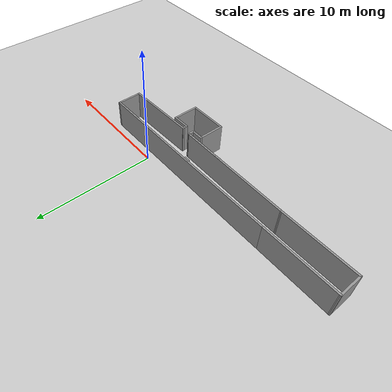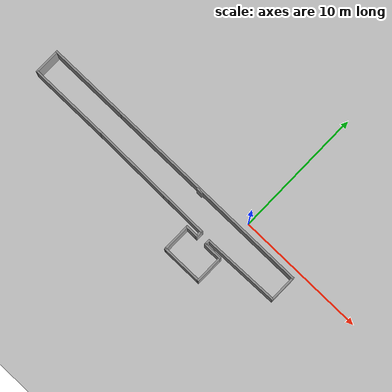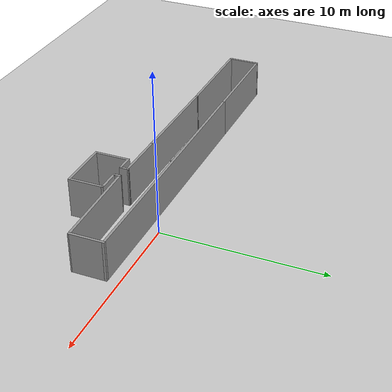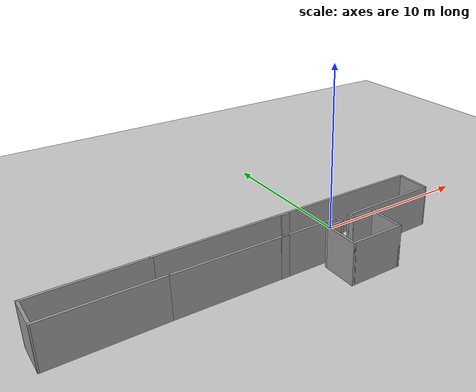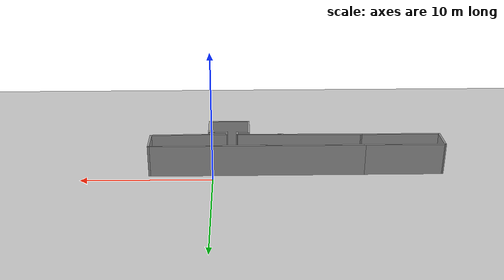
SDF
<sdf version="1.7">
 <world name="default">
  <light name="sun" type="directional">
   <pose>0 0 10 0 -0 0</pose>
   <diffuse>0.8 0.8 0.8 1</diffuse>
   <specular>0.2 0.2 0.2 1</specular>
   <attenuation>
    <range>1000</range>
    <constant>0.9</constant>
    <linear>0.01</linear>
    <quadratic>0.001</quadratic>
   </attenuation>
   <direction>-0.5 0.1 -0.9</direction>
   <spot><inner_angle>0</inner_angle><outer_angle>0</outer_angle><falloff>0</falloff></spot>
  </light>
  <model name="ground_plane">
   <static>1</static>
   <link name="link">
    <collision name="collision">
     <geometry><plane><normal>0 0 1</normal><size>100 100</size></plane></geometry>
     <surface>
      <contact><collide_bitmask>65535</collide_bitmask></contact>
      <friction><ode><mu>100</mu><mu2>50</mu2></ode></friction>
     </surface>
    </collision>
    <visual name="visual">
     <cast_shadows>0</cast_shadows>
     <geometry><plane><normal>0 0 1</normal><size>100 100</size></plane></geometry>
     <material>
      <script><uri>file://media/materials/scripts/gazebo.material</uri><name>Gazebo/Grey</name></script>
     </material>
    </visual>
   </link>
  </model>
  <gravity>0 0 -9.8</gravity>
  <magnetic_field>6e-06 2.3e-05 -4.2e-05</magnetic_field>
  <atmosphere type="adiabatic"/>
  <physics type="ode">
   <max_step_size>0.001</max_step_size>
   <real_time_factor>1</real_time_factor>
   <real_time_update_rate>1000</real_time_update_rate>
  </physics>
  <scene><ambient>0.4 0.4 0.4 1</ambient><background>0.7 0.7 0.7 1</background><shadows>1</shadows></scene>
  <audio><device>default</device></audio>
  <spherical_coordinates>
   <surface_model>EARTH_WGS84</surface_model>
   <latitude_deg>0</latitude_deg>
   <longitude_deg>0</longitude_deg>
   <elevation>0</elevation>
   <heading_deg>0</heading_deg>
  </spherical_coordinates>
  <model name="testworld3">
   <pose>-6.40432 -2.68838 0 0 -0 0</pose>
   <link name="Wall_11">
    <collision name="Wall_11_Collision">
     <geometry><box><size>16.5 0.15 2.5</size></box></geometry>
     <pose>0 0 1.25 0 -0 0</pose>
    </collision>
    <visual name="Wall_11_Visual">
     <pose>0 0 1.25 0 -0 0</pose>
     <geometry><box><size>16.5 0.15 2.5</size></box></geometry>
     <material>
      <script><uri>file://media/materials/scripts/gazebo.material</uri><name>Gazebo/Grey</name></script>
      <ambient>1 1 1 1</ambient>
     </material>
     <meta><layer>0</layer></meta>
    </visual>
    <pose>3.04932 1.95838 0 0 -0 3.14159</pose>
   </link>
   <link name="Wall_13">
    <collision name="Wall_13_Collision">
     <geometry><box><size>9.76351 0.15 2.5</size></box></geometry>
     <pose>0 0 1.25 0 -0 0</pose>
    </collision>
    <visual name="Wall_13_Visual">
     <pose>0 0 1.25 0 -0 0</pose>
     <geometry><box><size>9.76351 0.15 2.5</size></box></geometry>
     <material>
      <script><uri>file://media/materials/scripts/gazebo.material</uri><name>Gazebo/Grey</name></script>
      <ambient>1 1 1 1</ambient>
     </material>
     <meta><layer>0</layer></meta>
    </visual>
    <pose>-0.31584 -0.010052 0 0 -0 3.1288</pose>
   </link>
   <link name="Wall_18">
    <collision name="Wall_18_Collision">
     <geometry><box><size>0.5 0.15 2.5</size></box></geometry>
     <pose>0 0 1.25 0 -0 0</pose>
    </collision>
    <visual name="Wall_18_Visual">
     <pose>0 0 1.25 0 -0 0</pose>
     <geometry><box><size>0.5 0.15 2.5</size></box></geometry>
     <material>
      <script><uri>file://media/materials/scripts/gazebo.material</uri><name>Gazebo/Grey</name></script>
      <ambient>1 1 1 1</ambient>
     </material>
     <meta><layer>0</layer></meta>
    </visual>
    <pose>2.52934 1.86135 0 0 -0 0</pose>
   </link>
   <link name="Wall_22">
    <collision name="Wall_22_Collision">
     <geometry><box><size>0.15 0.15 2.5</size></box></geometry>
     <pose>0 0 1.25 0 -0 0</pose>
    </collision>
    <visual name="Wall_22_Visual">
     <pose>0 0 1.25 0 -0 0</pose>
     <geometry><box><size>0.15 0.15 2.5</size></box></geometry>
     <material>
      <script><uri>file://media/materials/scripts/gazebo.material</uri><name>Gazebo/Grey</name></script>
      <ambient>1 1 1 1</ambient>
     </material>
     <meta><layer>0</layer></meta>
    </visual>
    <pose>4.53704 -0.07153 0 0 -0 0</pose>
   </link>
   <link name="Wall_25">
    <collision name="Wall_25_Collision">
     <geometry><box><size>0.59305 0.15 2.5</size></box></geometry>
     <pose>0 0 1.25 0 -0 0</pose>
    </collision>
    <visual name="Wall_25_Visual">
     <pose>0 0 1.25 0 -0 0</pose>
     <geometry><box><size>0.59305 0.15 2.5</size></box></geometry>
     <material>
      <script><uri>file://media/materials/scripts/gazebo.material</uri><name>Gazebo/Grey</name></script>
      <ambient>1 1 1 1</ambient>
     </material>
     <meta><layer>0</layer></meta>
    </visual>
    <pose>4.53775 -0.293054 0 0 -0 -1.56761</pose>
   </link>
   <link name="Wall_27">
    <collision name="Wall_27_Collision">
     <geometry><box><size>0.5 0.15 2.5</size></box></geometry>
     <pose>0 0 1.25 0 -0 0</pose>
    </collision>
    <visual name="Wall_27_Visual">
     <pose>0 0 1.25 0 -0 0</pose>
     <geometry><box><size>0.5 0.15 2.5</size></box></geometry>
     <material>
      <script><uri>file://media/materials/scripts/gazebo.material</uri><name>Gazebo/Grey</name></script>
      <ambient>1 1 1 1</ambient>
     </material>
     <meta><layer>0</layer></meta>
    </visual>
    <pose>5.35443 -0.334415 0 0 -0 -1.5708</pose>
   </link>
   <link name="Wall_32">
    <collision name="Wall_32_Collision">
     <geometry><box><size>1 0.15 2.5</size></box></geometry>
     <pose>0 0 1.25 0 -0 0</pose>
    </collision>
    <visual name="Wall_32_Visual">
     <pose>0 0 1.25 0 -0 0</pose>
     <geometry><box><size>1 0.15 2.5</size></box></geometry>
     <material>
      <script><uri>file://media/materials/scripts/gazebo.material</uri><name>Gazebo/Grey</name></script>
      <ambient>1 1 1 1</ambient>
     </material>
     <meta><layer>0</layer></meta>
    </visual>
    <pose>4.03767 -0.513378 0 0 -0 3.14159</pose>
   </link>
   <link name="Wall_33">
    <collision name="Wall_33_Collision">
     <geometry><box><size>2.25 0.15 2.5</size></box></geometry>
     <pose>0 0 1.25 0 -0 0</pose>
    </collision>
    <visual name="Wall_33_Visual">
     <pose>0 0 1.25 0 -0 0</pose>
     <geometry><box><size>2.25 0.15 2.5</size></box></geometry>
     <material>
      <script><uri>file://media/materials/scripts/gazebo.material</uri><name>Gazebo/Grey</name></script>
      <ambient>1 1 1 1</ambient>
     </material>
     <meta><layer>0</layer></meta>
    </visual>
    <pose>3.61267 -1.56338 0 0 -0 -1.5708</pose>
   </link>
   <link name="Wall_34">
    <collision name="Wall_34_Collision">
     <geometry><box><size>3.25 0.15 2.5</size></box></geometry>
     <pose>0 0 1.25 0 -0 0</pose>
    </collision>
    <visual name="Wall_34_Visual">
     <pose>0 0 1.25 0 -0 0</pose>
     <geometry><box><size>3.25 0.15 2.5</size></box></geometry>
     <material>
      <script><uri>file://media/materials/scripts/gazebo.material</uri><name>Gazebo/Grey</name></script>
      <ambient>1 1 1 1</ambient>
     </material>
     <meta><layer>0</layer></meta>
    </visual>
    <pose>5.16267 -2.61338 0 0 -0 0</pose>
   </link>
   <link name="Wall_35">
    <collision name="Wall_35_Collision">
     <geometry><box><size>2.25 0.15 2.5</size></box></geometry>
     <pose>0 0 1.25 0 -0 0</pose>
    </collision>
    <visual name="Wall_35_Visual">
     <pose>0 0 1.25 0 -0 0</pose>
     <geometry><box><size>2.25 0.15 2.5</size></box></geometry>
     <material>
      <script><uri>file://media/materials/scripts/gazebo.material</uri><name>Gazebo/Grey</name></script>
      <ambient>1 1 1 1</ambient>
     </material>
     <meta><layer>0</layer></meta>
    </visual>
    <pose>6.71267 -1.56338 0 0 -0 1.5708</pose>
   </link>
   <link name="Wall_36">
    <collision name="Wall_36_Collision">
     <geometry><box><size>1.5 0.15 2.5</size></box></geometry>
     <pose>0 0 1.25 0 -0 0</pose>
    </collision>
    <visual name="Wall_36_Visual">
     <pose>0 0 1.25 0 -0 0</pose>
     <geometry><box><size>1.5 0.15 2.5</size></box></geometry>
     <material>
      <script><uri>file://media/materials/scripts/gazebo.material</uri><name>Gazebo/Grey</name></script>
      <ambient>1 1 1 1</ambient>
     </material>
     <meta><layer>0</layer></meta>
    </visual>
    <pose>6.03767 -0.513378 0 0 -0 3.14159</pose>
   </link>
   <link name="Wall_38">
    <collision name="Wall_38_Collision">
     <geometry><box><size>0.5 0.15 2.5</size></box></geometry>
     <pose>0 0 1.25 0 -0 0</pose>
    </collision>
    <visual name="Wall_38_Visual">
     <pose>0 0 1.25 0 -0 0</pose>
     <geometry><box><size>0.5 0.15 2.5</size></box></geometry>
     <material>
      <script><uri>file://media/materials/scripts/gazebo.material</uri><name>Gazebo/Grey</name></script>
      <ambient>1 1 1 1</ambient>
     </material>
     <meta><layer>0</layer></meta>
    </visual>
    <pose>1.20649 -0.041909 0 0 -0 0</pose>
   </link>
   <link name="Wall_40">
    <collision name="Wall_40_Collision">
     <geometry><box><size>6.25 0.15 2.5</size></box></geometry>
     <pose>0 0 1.25 0 -0 0</pose>
    </collision>
    <visual name="Wall_40_Visual">
     <pose>0 0 1.25 0 -0 0</pose>
     <geometry><box><size>6.25 0.15 2.5</size></box></geometry>
     <material>
      <script><uri>file://media/materials/scripts/gazebo.material</uri><name>Gazebo/Grey</name></script>
      <ambient>1 1 1 1</ambient>
     </material>
     <meta><layer>0</layer></meta>
    </visual>
    <pose>-8.1722 0.051426 0 0 -0 3.14159</pose>
   </link>
   <link name="Wall_43">
    <collision name="Wall_43_Collision">
     <geometry><box><size>6.25 0.15 2.5</size></box></geometry>
     <pose>0 0 1.25 0 -0 0</pose>
    </collision>
    <visual name="Wall_43_Visual">
     <pose>0 0 1.25 0 -0 0</pose>
     <geometry><box><size>6.25 0.15 2.5</size></box></geometry>
     <material>
      <script><uri>file://media/materials/scripts/gazebo.material</uri><name>Gazebo/Grey</name></script>
      <ambient>1 1 1 1</ambient>
     </material>
     <meta><layer>0</layer></meta>
    </visual>
    <pose>-8.17568 1.95838 0 0 -0 3.14159</pose>
   </link>
   <link name="Wall_45">
    <collision name="Wall_45_Collision">
     <geometry><box><size>2.05695 0.15 2.5</size></box></geometry>
     <pose>0 0 1.25 0 -0 0</pose>
    </collision>
    <visual name="Wall_45_Visual">
     <pose>0 0 1.25 0 -0 0</pose>
     <geometry><box><size>2.05695 0.15 2.5</size></box></geometry>
     <material>
      <script><uri>file://media/materials/scripts/gazebo.material</uri><name>Gazebo/Grey</name></script>
      <ambient>1 1 1 1</ambient>
     </material>
     <meta><layer>0</layer></meta>
    </visual>
    <pose>-11.2239 1.0049 0 0 -0 -1.56897</pose>
   </link>
   <link name="Wall_6">
    <collision name="Wall_6_Collision">
     <geometry><box><size>6.03107 0.15 2.5</size></box></geometry>
     <pose>0 0 1.25 0 -0 0</pose>
    </collision>
    <visual name="Wall_6_Visual">
     <pose>0 0 1.25 0 -0 0</pose>
     <geometry><box><size>6.03107 0.15 2.5</size></box></geometry>
     <material>
      <script><uri>file://media/materials/scripts/gazebo.material</uri><name>Gazebo/Grey</name></script>
      <ambient>1 1 1 1</ambient>
     </material>
     <meta><layer>0</layer></meta>
    </visual>
    <pose>8.28438 -0.100518 0 0 -0 0.020031</pose>
   </link>
   <link name="Wall_7">
    <collision name="Wall_7_Collision">
     <geometry><box><size>2.15 0.15 2.5</size></box></geometry>
     <pose>0 0 1.25 0 -0 0</pose>
    </collision>
    <visual name="Wall_7_Visual">
     <pose>0 0 1.25 0 -0 0</pose>
     <geometry><box><size>2.15 0.15 2.5</size></box></geometry>
     <material>
      <script><uri>file://media/materials/scripts/gazebo.material</uri><name>Gazebo/Grey</name></script>
      <ambient>1 1 1 1</ambient>
     </material>
     <meta><layer>0</layer></meta>
    </visual>
    <pose>11.2243 0.958378 0 0 -0 1.5708</pose>
   </link>
   <static>1</static>
  </model>
 </world>
</sdf>
